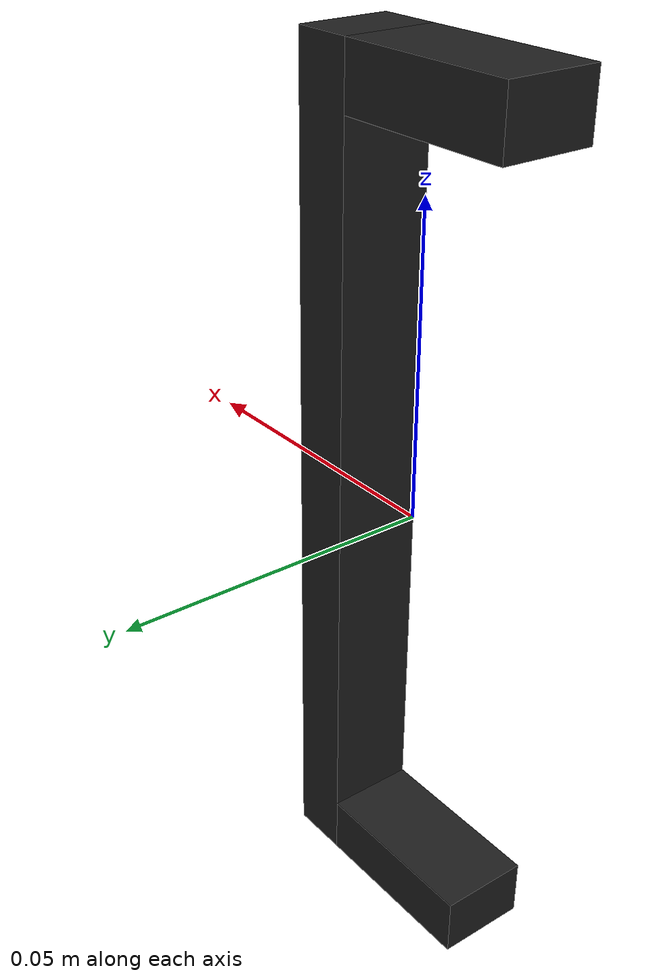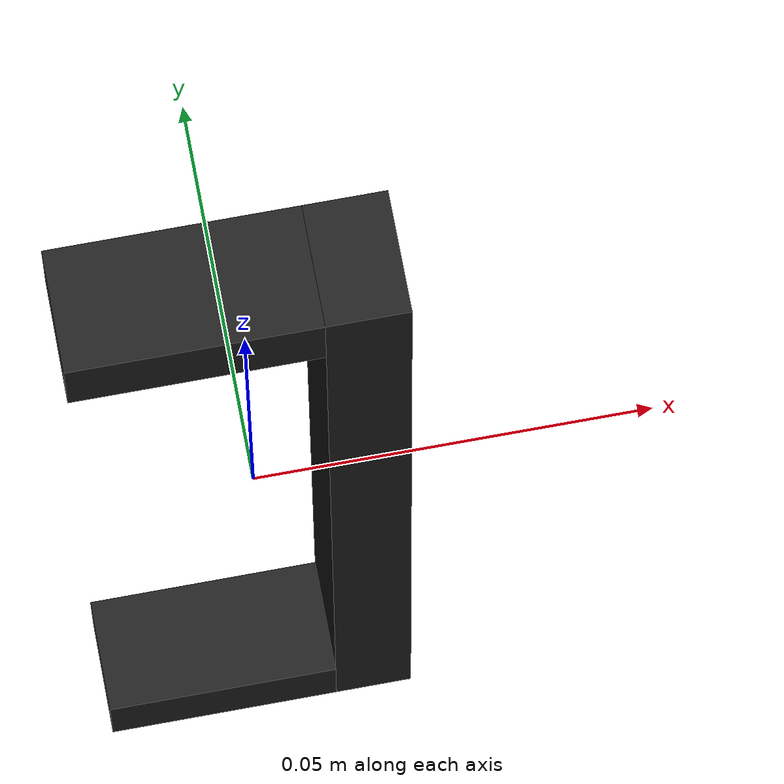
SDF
<?xml version='1.0'?>
<sdf version='1.6'>
  <model name='DoorHandle'>
    <link name='link_2'>
      <pose frame=''>0.013333 0 -0 0 -0 0</pose>
      <visual name='visual'>
        <pose frame=''>0 0 0 0 -0 0</pose>
        <geometry>
          <box>
            <size>0.01 0.015 0.14</size>
          </box>
        </geometry>
        <material>
          <lighting>1</lighting>
          <script>
            <name>Gazebo/Black</name>
            <uri>file://media/materials/scripts/gazebo.material</uri>
          </script>
          <shader type='pixel'>
            <normal_map>__default__</normal_map>
          </shader>
	  <ambient>0 0 0 1</ambient>
	  <specular>0 0 0 1</specular>
	  <diffuse>0 0 0 1</diffuse>
	  <emissive>0 0 0 1</emissive>
        </material>
        <transparency>0</transparency>
        <cast_shadows>1</cast_shadows>
      </visual>
      <collision name='collision'>
        <laser_retro>0</laser_retro>
        <max_contacts>10</max_contacts>
        <pose frame=''>0 0 0 0 -0 0</pose>
        <geometry>
          <box>
            <size>0.01 0.015 0.14</size>
          </box>
        </geometry>
      </collision>
    </link>
    <link name='link_4'>
      <pose frame=''>-0.006667 0 -0.065 0 -0 0</pose>
      <visual name='visual'>
        <pose frame=''>0 0 0 0 -0 0</pose>
        <geometry>
          <box>
            <size>0.03 0.015 0.01</size>
          </box>
        </geometry>
        <material>
          <lighting>1</lighting>
          <script>
            <name>Gazebo/Black</name>
            <uri>file://media/materials/scripts/gazebo.material</uri>
          </script>
          <shader type='pixel'>
            <normal_map>__default__</normal_map>
          </shader>
	  <ambient>0 0 0 1</ambient>
	  <specular>0 0 0 1</specular>
	  <diffuse>0 0 0 1</diffuse>
	  <emissive>0 0 0 1</emissive>
        </material>
        <transparency>0</transparency>
        <cast_shadows>1</cast_shadows>
      </visual>
      <collision name='collision'>
        <laser_retro>0</laser_retro>
        <max_contacts>10</max_contacts>
        <pose frame=''>0 0 0 0 -0 0</pose>
        <geometry>
          <box>
            <size>0.03 0.015 0.01</size>
          </box>
        </geometry>
      </collision>
    </link>
    <link name='link_5'>
      <pose frame=''>-0.006667 0 0.065001 0 -0 0</pose>
      <visual name='visual'>
        <pose frame=''>0 0 0 0 -0 0</pose>
        <geometry>
          <box>
            <size>0.03 0.015 0.01</size>
          </box>
        </geometry>
        <material>
          <lighting>1</lighting>
          <script>
            <name>Gazebo/Black</name>
            <uri>file://media/materials/scripts/gazebo.material</uri>
          </script>
	  <ambient>0 0 0 1</ambient>
	  <specular>0 0 0 1</specular>
	  <diffuse>0 0 0 1</diffuse>
	  <emissive>0 0 0 1</emissive>
          <shader type='pixel'>
            <normal_map>__default__</normal_map>
          </shader>
        </material>
        <transparency>0</transparency>
        <cast_shadows>1</cast_shadows>
      </visual>
      <collision name='collision'>
        <laser_retro>0</laser_retro>
        <max_contacts>10</max_contacts>
        <pose frame=''>0 0 0 0 -0 0</pose>
        <geometry>
          <box>
            <size>0.03 0.015 0.01</size>
          </box>
        </geometry>
      </collision>
    </link>
    <joint name='link_2_JOINT_2' type='fixed'>
      <parent>link_2</parent>
      <child>link_4</child>
      <pose frame=''>0 0 0 0 -0 0</pose>
    </joint>
    <joint name='link_5_JOINT_1' type='fixed'>
      <parent>link_5</parent>
      <child>link_2</child>
      <pose frame=''>0 0 0 0 -0 0</pose>
    </joint>
    <static>1</static>
    <allow_auto_disable>1</allow_auto_disable>
  </model>
</sdf>
